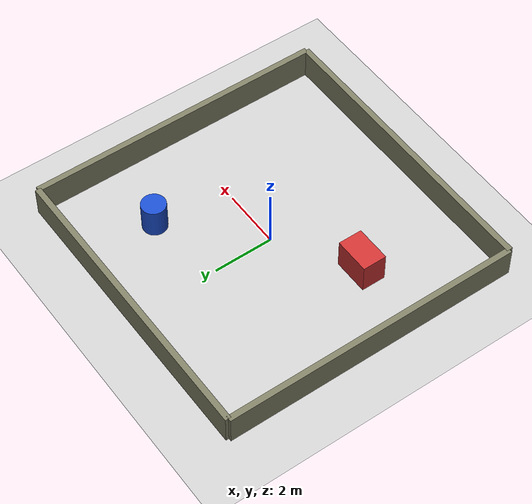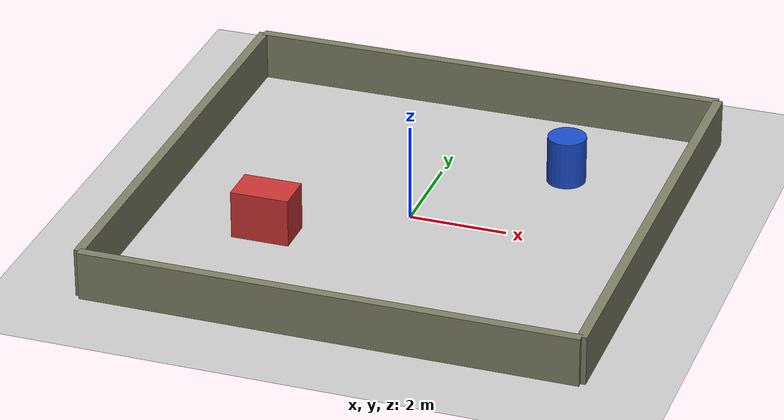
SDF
<?xml version="1.0" ?>
<sdf version="1.8">
  <world name="custom_factory">

    <!-- Required Gazebo Fortress Plugins -->
    <plugin filename="ignition-gazebo-physics-system" name="ignition::gazebo::systems::Physics"></plugin>
    <plugin filename="ignition-gazebo-scene-broadcaster-system" name="ignition::gazebo::systems::SceneBroadcaster"></plugin>
    <plugin filename="ignition-gazebo-user-commands-system" name="ignition::gazebo::systems::UserCommands"></plugin>
    <plugin filename="ignition-gazebo-contact-system" name="ignition::gazebo::systems::Contact"></plugin>

    <!-- The Sensors plugin MUST live in the world file, not the robot URDF -->
    <plugin filename="ignition-gazebo-sensors-system" name="ignition::gazebo::systems::Sensors">
      <render_engine>ogre2</render_engine>
    </plugin>

    <!-- Lock the default camera above the room, pointing directly at the robot (Y=3) -->
    <gui fullscreen="0">
      <camera name="user_camera">
        <pose>0.0 -4.0 6.0 0 0.6 1.5708</pose>
      </camera>
    </gui>

    <!-- Global Light -->
    <light type="directional" name="sun">
      <cast_shadows>true</cast_shadows>
      <pose>0 0 10 0 0 0</pose>
      <diffuse>0.8 0.8 0.8 1</diffuse>
      <specular>0.2 0.2 0.2 1</specular>
      <direction>-0.5 0.1 -0.9</direction>
    </light>

    <!-- Floor -->
    <model name="ground_plane">
      <static>true</static>
      <link name="link">
        <collision name="collision">
          <geometry><plane><normal>0 0 1</normal><size>100 100</size></plane></geometry>
        </collision>
        <visual name="visual">
          <geometry><plane><normal>0 0 1</normal><size>100 100</size></plane></geometry>
          <material>
            <ambient>0.8 0.8 0.8 1</ambient>
            <diffuse>0.8 0.8 0.8 1</diffuse>
          </material>
        </visual>
      </link>
    </model>

    <!-- 10x10 Enclosed Walls -->
    <model name="factory_walls">
      <static>true</static>
      <pose>0 0 0.5 0 0 0</pose>

      <!-- North Wall -->
      <link name="wall_north">
        <pose>0 5 0 0 0 0</pose>
        <collision name="c_n"><geometry><box><size>10 0.2 1</size></box></geometry></collision>
        <visual name="v_n"><geometry><box><size>10 0.2 1</size></box></geometry><material><ambient>0.5 0.5 0.4 1</ambient></material></visual>
      </link>

      <!-- South Wall -->
      <link name="wall_south">
        <pose>0 -5 0 0 0 0</pose>
        <collision name="c_s"><geometry><box><size>10 0.2 1</size></box></geometry></collision>
        <visual name="v_s"><geometry><box><size>10 0.2 1</size></box></geometry><material><ambient>0.5 0.5 0.4 1</ambient></material></visual>
      </link>

      <!-- East Wall -->
      <link name="wall_east">
        <pose>5 0 0 0 0 1.5708</pose>
        <collision name="c_e"><geometry><box><size>10 0.2 1</size></box></geometry></collision>
        <visual name="v_e"><geometry><box><size>10 0.2 1</size></box></geometry><material><ambient>0.5 0.5 0.4 1</ambient></material></visual>
      </link>

      <!-- West Wall -->
      <link name="wall_west">
        <pose>-5 0 0 0 0 1.5708</pose>
        <collision name="c_w"><geometry><box><size>10 0.2 1</size></box></geometry></collision>
        <visual name="v_w"><geometry><box><size>10 0.2 1</size></box></geometry><material><ambient>0.5 0.5 0.4 1</ambient></material></visual>
      </link>
    </model>

    <!-- Obstacle 1: Blue Cylinder -->
    <model name="obstacle_cylinder">
      <static>true</static>
      <pose>2.5 2.5 0.5 0 0 0</pose>
      <link name="link">
        <collision name="c"><geometry><cylinder><radius>0.4</radius><length>1</length></cylinder></geometry></collision>
        <visual name="v"><geometry><cylinder><radius>0.4</radius><length>1</length></cylinder></geometry><material><ambient>0.1 0.3 0.8 1</ambient></material></visual>
      </link>
    </model>

    <!-- Obstacle 2: Red Box -->
    <model name="obstacle_box">
      <static>true</static>
      <pose>-2.5 -1.5 0.5 0 0 0</pose>
      <link name="link">
        <collision name="c"><geometry><box><size>1.2 0.8 1</size></box></geometry></collision>
        <visual name="v"><geometry><box><size>1.2 0.8 1</size></box></geometry><material><ambient>0.8 0.2 0.2 1</ambient></material></visual>
      </link>
    </model>

  </world>
</sdf>
